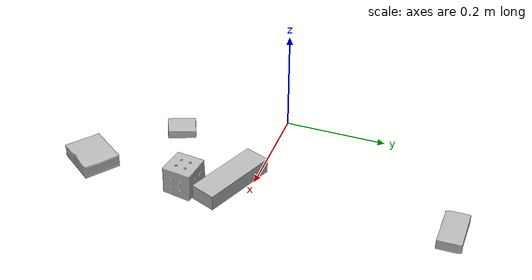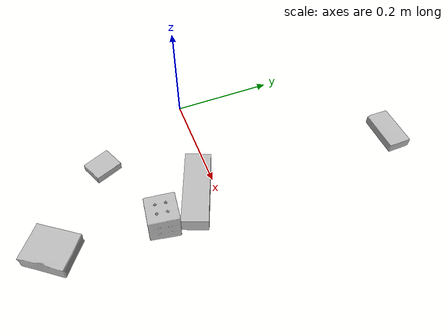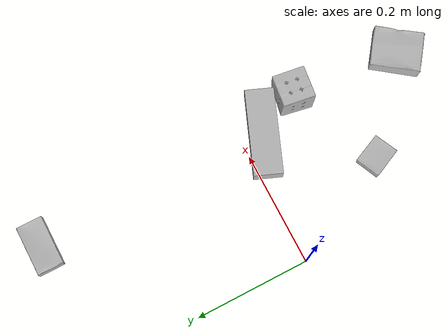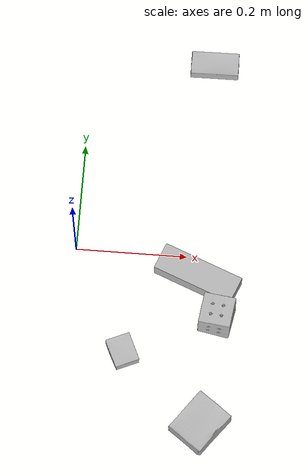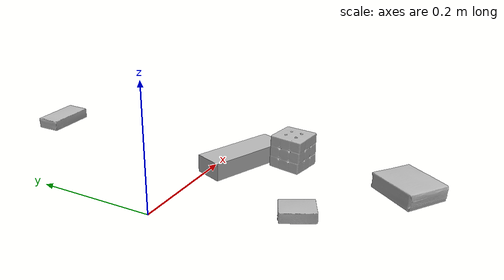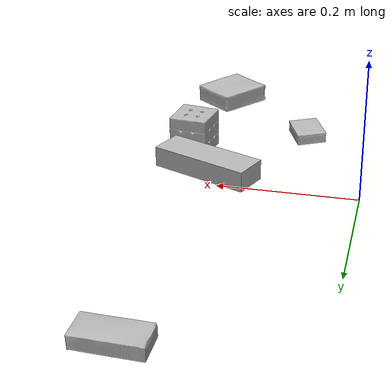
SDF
<sdf version="1.4">
  <world name="default">
    <light name="light1" type="point">
      <pose>0 0 1 0 0 0</pose>
      <diffuse>3 3 3 1</diffuse>
      <specular>3 3 3 1</specular>
    </light>
    <light name="light2" type="point">
      <pose>0 0.5 2 0 0 0</pose>
      <diffuse>1 1 1 1</diffuse>
      <specular>1 1 1 1</specular>
    </light>
    <light name="light3" type="point">
      <pose>0 0.5 2 0 0 0</pose>
      <diffuse>3 3 3 1</diffuse>
      <specular>3 3 3 1</specular>
    </light>
    <scene>
      <ambient>0.7 0.7 0.7</ambient>
    </scene>
    <model name="box1">
      <link name="link_box1">
        <collision name="default">
          <geometry>
            <mesh>
              <uri>model://jenga/collision_meshes/collision.obj</uri>
              <scale>1.0 1.0 1.0</scale>
            </mesh>
          </geometry>
          <surface>
            <friction>
              <ode>
                <mu>0.5</mu>
                <mu2>0.5</mu2>
              </ode>
            </friction>
          <contact>
        <ode>
            <max_vel>0</max_vel>
            <min_depth>0.0001</min_depth>
            <kp>1e8</kp>
        </ode>
    </contact></surface>
        </collision>
        <visual name="default">
          <geometry>
            <mesh>
              <uri>model://jenga/visual_meshes/visual.dae</uri>
              <scale>1.0 1.0 1.0</scale>
            </mesh>
          </geometry>
        </visual>
        <inertial>
          <mass>0.28879067301750183</mass>
          <pose>-2.502855807051674e-07 -0.00010250010382151231 -4.0923401684267446e-05 0.0 -7.342154049184251e-07 0.0</pose>
          <inertia>
            <ixx>7.991539e-05</ixx>
            <iyy>0.00054150453</iyy>
            <izz>0.00057810213</izz>
            <ixy>0</ixy>
            <ixz>0</ixz>
            <iyz>0</iyz>
          </inertia>
        </inertial>
      </link>
      <pose>0.22224298119544983 -0.03874354809522629 0.01500004157423973 4.532253220823001e-06 1.9972603563485465e-07 -0.3821207881313549</pose>
    </model>
    <model name="box2">
      <link name="link_box2">
        <collision name="default">
          <geometry>
            <mesh>
              <uri>model://sugar_box/collision_meshes/collision.obj</uri>
              <scale>0.5 0.5 0.5</scale>
            </mesh>
          </geometry>
          <surface>
            <friction>
              <ode>
                <mu>0.5</mu>
                <mu2>0.5</mu2>
              </ode>
            </friction>
          <contact>
        <ode>
            <max_vel>0</max_vel>
            <min_depth>0.0001</min_depth>
            <kp>1e8</kp>
        </ode>
    </contact></surface>
        </collision>
        <visual name="default">
          <geometry>
            <mesh>
              <uri>model://sugar_box/visual_meshes/visual.dae</uri>
              <scale>0.5 0.5 0.5</scale>
            </mesh>
          </geometry>
        </visual>
        <inertial>
          <mass>0.10389333218336105</mass>
          <pose>0.000517186417710036 1.9245549992774613e-05 -0.00018182402709499002 -0.00040462615469338603 0.0010506637547558321 0.0026153785561208315</pose>
          <inertia>
            <ixx>2.1640906e-05</ixx>
            <iyy>6.994788e-05</iyy>
            <izz>8.373595e-05</izz>
            <ixy>0</ixy>
            <ixz>0</ixz>
            <iyz>0</iyz>
          </inertia>
        </inertial>
      </link>
      <pose>0.22384656965732574 0.3767731785774231 0.011399303562939167 0.0007745865952597537 -0.02343304432506089 -0.005807334469097476</pose>
    </model>
    <model name="box3">
      <link name="link_box3">
        <collision name="default">
          <geometry>
            <mesh>
              <uri>model://rubiks_cube/collision_meshes/collision.obj</uri>
              <scale>1.0 1.0 1.0</scale>
            </mesh>
          </geometry>
          <surface>
            <friction>
              <ode>
                <mu>0.5</mu>
                <mu2>0.5</mu2>
              </ode>
            </friction>
          <contact>
        <ode>
            <max_vel>0</max_vel>
            <min_depth>0.0001</min_depth>
            <kp>1e8</kp>
        </ode>
    </contact></surface>
        </collision>
        <visual name="default">
          <geometry>
            <mesh>
              <uri>model://rubiks_cube/visual_meshes/visual.dae</uri>
              <scale>1.0 1.0 1.0</scale>
            </mesh>
          </geometry>
        </visual>
        <inertial>
          <mass>0.21973572671413422</mass>
          <pose>2.6721041649580002e-05 5.256966323941015e-05 -7.264316082000732e-06 -0.054673783840129137 -0.09814154164948871 -0.03445565380518822</pose>
          <inertia>
            <ixx>0.00012141874</ixx>
            <iyy>0.000120852514</iyy>
            <izz>0.00012242487</izz>
            <ixy>0</ixy>
            <ixz>0</ixz>
            <iyz>0</iyz>
          </inertia>
        </inertial>
      </link>
      <pose>0.2611876130104065 -0.11543165892362595 0.028678925707936287 -1.1619048617250356e-05 -7.702384569513272e-07 -0.14480517862091152</pose>
    </model>
    <model name="box4">
      <link name="link_box4">
        <collision name="default">
          <geometry>
            <mesh>
              <uri>model://pudding_box/collision_meshes/collision.obj</uri>
              <scale>0.5 0.5 0.5</scale>
            </mesh>
          </geometry>
          <surface>
            <friction>
              <ode>
                <mu>0.5</mu>
                <mu2>0.5</mu2>
              </ode>
            </friction>
          <contact>
        <ode>
            <max_vel>0</max_vel>
            <min_depth>0.0001</min_depth>
            <kp>1e8</kp>
        </ode>
    </contact></surface>
        </collision>
        <visual name="default">
          <geometry>
            <mesh>
              <uri>model://pudding_box/visual_meshes/visual.dae</uri>
              <scale>0.5 0.5 0.5</scale>
            </mesh>
          </geometry>
        </visual>
        <inertial>
          <mass>0.0391676165163517</mass>
          <pose>0.00024474109522998333 0.00040339428232982755 -0.0002594413817860186 0.005213101313254789 -0.0066037982630024914 0.020079830751203582</pose>
          <inertia>
            <ixx>1.1069244e-05</ixx>
            <iyy>7.447467e-06</iyy>
            <izz>1.634663e-05</izz>
            <ixy>0</ixy>
            <ixz>0</ixz>
            <iyz>0</iyz>
          </inertia>
        </inertial>
      </link>
      <pose>0.09943567961454391 -0.189326211810112 0.009862902574241161 0.0223484514933743 -0.011391813662023945 -2.7175520167676326</pose>
    </model>
    <model name="box5">
      <link name="link_box5">
        <collision name="default">
          <geometry>
            <mesh>
              <uri>model://gelatin_box/collision_meshes/collision.obj</uri>
              <scale>1.0 1.0 1.0</scale>
            </mesh>
          </geometry>
          <surface>
            <friction>
              <ode>
                <mu>0.5</mu>
                <mu2>0.5</mu2>
              </ode>
            </friction>
          <contact>
        <ode>
            <max_vel>0</max_vel>
            <min_depth>0.0001</min_depth>
            <kp>1e8</kp>
        </ode>
    </contact></surface>
        </collision>
        <visual name="default">
          <geometry>
            <mesh>
              <uri>model://gelatin_box/visual_meshes/visual.dae</uri>
              <scale>1.0 1.0 1.0</scale>
            </mesh>
          </geometry>
        </visual>
        <inertial>
          <mass>0.24157556891441345</mass>
          <pose>0.0004319618456065655 0.00011156872642459348 -0.0003640321083366871 -0.0010503718658393805 -0.0047558177571565665 0.016440565059328244</pose>
          <inertia>
            <ixx>0.00017053263</ixx>
            <iyy>0.00012181056</iyy>
            <izz>0.00025958868</izz>
            <ixy>0</ixy>
            <ixz>0</ixz>
            <iyz>0</iyz>
          </inertia>
        </inertial>
      </link>
      <pose>0.24535135924816132 -0.31254303455352783 0.015168309211730957 0.005597448411536847 -0.007304526897683793 -0.6479107584165433</pose>
    </model>
  <physics type="ode">
      <max_contacts>50</max_contacts>
      <ode>
        <solver>
          <type>quick</type>
          <iters>75</iters>
        </solver>
        <constraints>
          <contact_max_correcting_vel>0</contact_max_correcting_vel>
          <contact_surface_layer>0</contact_surface_layer>
        </constraints>
      </ode>
    </physics></world>
</sdf>
